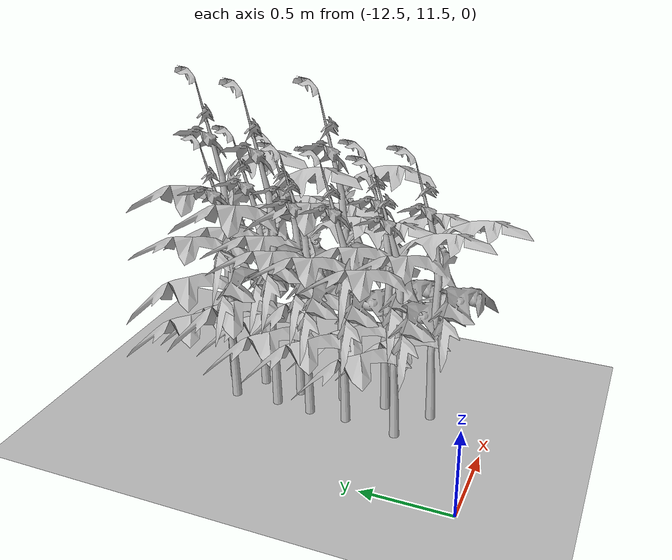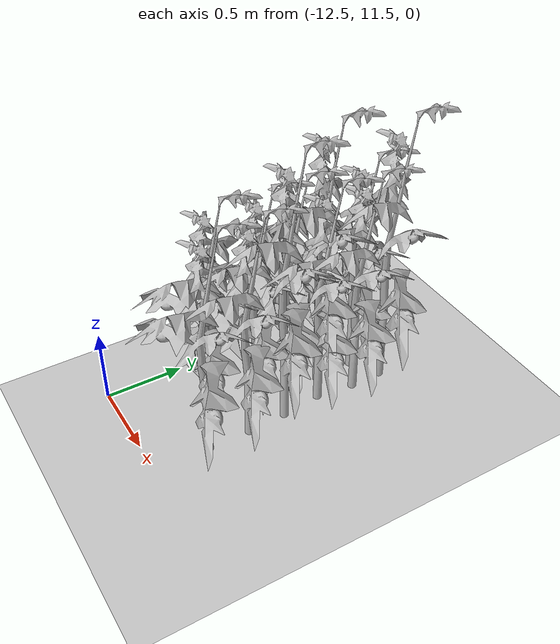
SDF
<sdf version="1.6">
 <world name="default">
  <model name="ground_plane">
   <static>1</static>
   <link name="link">
    <collision name="collision">
     <geometry><plane><normal>0 0 1</normal><size>100 100</size></plane></geometry>
     <surface>
      <contact><collide_bitmask>65535</collide_bitmask></contact>
      <friction><ode><mu>100</mu><mu2>50</mu2></ode></friction>
     </surface>
    </collision>
    <visual name="visual">
     <cast_shadows>0</cast_shadows>
     <geometry><plane><normal>0 0 1</normal><size>100 100</size></plane></geometry>
     <material>
      <script><uri>file://media/materials/scripts/gazebo.material</uri><name>Gazebo/Grey</name></script>
     </material>
    </visual>
   </link>
  </model>
  <model name="Front_Plant_1_31">
   <model name="tomato_plant_medium">
    <static>1</static>
    <link name="link">
     <collision name="collision">
      <pose>0 0 0 1.5708 -0 0</pose>
      <geometry><mesh><scale>0.5 0.5 0.5</scale><uri>model://stick/meshes/stick.dae</uri></mesh></geometry>
     </collision>
     <visual name="visual">
      <geometry>
       <mesh><scale>5e-06 5e-06 6e-06</scale><uri>model://tomato_plant_medium/meshes/tomato-plant.dae</uri></mesh>
      </geometry>
     </visual>
    </link>
    <pose>0.087453 -0.595994 0.012396 0 -0 0</pose>
   </model>
   <model name="tomato_plant_medium_0">
    <static>1</static>
    <link name="link">
     <collision name="collision">
      <pose>0 0 0 1.5708 -0 0</pose>
      <geometry><mesh><scale>0.5 0.5 0.5</scale><uri>model://stick/meshes/stick.dae</uri></mesh></geometry>
     </collision>
     <visual name="visual">
      <geometry>
       <mesh><scale>5e-06 5e-06 6e-06</scale><uri>model://tomato_plant_medium/meshes/tomato-plant.dae</uri></mesh>
      </geometry>
     </visual>
    </link>
    <pose>-0.086166 -0.251822 0.012396 0 -0 0</pose>
   </model>
   <model name="tomato_plant_medium_1">
    <static>1</static>
    <link name="link">
     <collision name="collision">
      <pose>0 0 0 1.5708 -0 0</pose>
      <geometry><mesh><scale>0.5 0.5 0.5</scale><uri>model://stick/meshes/stick.dae</uri></mesh></geometry>
     </collision>
     <visual name="visual">
      <geometry>
       <mesh><scale>5e-06 5e-06 6e-06</scale><uri>model://tomato_plant_medium/meshes/tomato-plant.dae</uri></mesh>
      </geometry>
     </visual>
    </link>
    <pose>0.080199 0.118127 0.012396 0 -0 0</pose>
   </model>
   <model name="tomato_plant_small">
    <static>1</static>
    <link name="link">
     <collision name="collision">
      <pose>0 0 0 1.5708 -0 0</pose>
      <geometry><mesh><scale>0.5 0.45 0.5</scale><uri>model://stick/meshes/stick.dae</uri></mesh></geometry>
     </collision>
     <visual name="visual">
      <geometry>
       <mesh><scale>5e-06 5e-06 5e-06</scale><uri>model://tomato_plant_small/meshes/tomato-plant.dae</uri></mesh>
      </geometry>
     </visual>
    </link>
    <pose>0.099683 -1.12011 0.012396 0 -0 0</pose>
   </model>
   <model name="tomato_plant_small_0">
    <static>1</static>
    <link name="link">
     <collision name="collision">
      <pose>0 0 0 1.5708 -0 0</pose>
      <geometry><mesh><scale>0.5 0.45 0.5</scale><uri>model://stick/meshes/stick.dae</uri></mesh></geometry>
     </collision>
     <visual name="visual">
      <geometry>
       <mesh><scale>5e-06 5e-06 5e-06</scale><uri>model://tomato_plant_small/meshes/tomato-plant.dae</uri></mesh>
      </geometry>
     </visual>
    </link>
    <pose>-0.138771 -0.983982 0.012396 0 -0 0</pose>
   </model>
   <model name="tomato_plant_small_1">
    <static>1</static>
    <link name="link">
     <collision name="collision">
      <pose>0 0 0 1.5708 -0 0</pose>
      <geometry><mesh><scale>0.5 0.45 0.5</scale><uri>model://stick/meshes/stick.dae</uri></mesh></geometry>
     </collision>
     <visual name="visual">
      <geometry>
       <mesh><scale>5e-06 5e-06 5e-06</scale><uri>model://tomato_plant_small/meshes/tomato-plant.dae</uri></mesh>
      </geometry>
     </visual>
    </link>
    <pose>0.101334 -0.848814 0.012396 0 -0 0</pose>
   </model>
   <model name="tomato_plant_small_2">
    <static>1</static>
    <link name="link">
     <collision name="collision">
      <pose>0 0 0 1.5708 -0 0</pose>
      <geometry><mesh><scale>0.5 0.45 0.5</scale><uri>model://stick/meshes/stick.dae</uri></mesh></geometry>
     </collision>
     <visual name="visual">
      <geometry>
       <mesh><scale>5e-06 5e-06 5e-06</scale><uri>model://tomato_plant_small/meshes/tomato-plant.dae</uri></mesh>
      </geometry>
     </visual>
    </link>
    <pose>-0.103369 -0.683189 0.012396 0 -0 0</pose>
   </model>
   <model name="tomato_plant_small_3">
    <static>1</static>
    <link name="link">
     <collision name="collision">
      <pose>0 0 0 1.5708 -0 0</pose>
      <geometry><mesh><scale>0.5 0.45 0.5</scale><uri>model://stick/meshes/stick.dae</uri></mesh></geometry>
     </collision>
     <visual name="visual">
      <geometry>
       <mesh><scale>5e-06 5e-06 5e-06</scale><uri>model://tomato_plant_small/meshes/tomato-plant.dae</uri></mesh>
      </geometry>
     </visual>
    </link>
    <pose>-0.104381 -0.464811 0.012396 0 -0 0</pose>
   </model>
   <model name="tomato_plant_small_4">
    <static>1</static>
    <link name="link">
     <collision name="collision">
      <pose>0 0 0 1.5708 -0 0</pose>
      <geometry><mesh><scale>0.5 0.45 0.5</scale><uri>model://stick/meshes/stick.dae</uri></mesh></geometry>
     </collision>
     <visual name="visual">
      <geometry>
       <mesh><scale>5e-06 5e-06 5e-06</scale><uri>model://tomato_plant_small/meshes/tomato-plant.dae</uri></mesh>
      </geometry>
     </visual>
    </link>
    <pose>0.055604 -0.336879 0.012396 0 -0 0</pose>
   </model>
   <model name="tomato_plant_small_5">
    <static>1</static>
    <link name="link">
     <collision name="collision">
      <pose>0 0 0 1.5708 -0 0</pose>
      <geometry><mesh><scale>0.5 0.45 0.5</scale><uri>model://stick/meshes/stick.dae</uri></mesh></geometry>
     </collision>
     <visual name="visual">
      <geometry>
       <mesh><scale>5e-06 5e-06 5e-06</scale><uri>model://tomato_plant_small/meshes/tomato-plant.dae</uri></mesh>
      </geometry>
     </visual>
    </link>
    <pose>0.085059 -0.092572 0.012396 0 -0 0</pose>
   </model>
   <model name="tomato_plant_small_6">
    <static>1</static>
    <link name="link">
     <collision name="collision">
      <pose>0 0 0 1.5708 -0 0</pose>
      <geometry><mesh><scale>0.5 0.45 0.5</scale><uri>model://stick/meshes/stick.dae</uri></mesh></geometry>
     </collision>
     <visual name="visual">
      <geometry>
       <mesh><scale>5e-06 5e-06 5e-06</scale><uri>model://tomato_plant_small/meshes/tomato-plant.dae</uri></mesh>
      </geometry>
     </visual>
    </link>
    <pose>-0.096345 0.008888 0.012396 0 -0 0</pose>
   </model>
   <static>0</static>
   <pose>-11.8544 12.9427 0 0 -0 0</pose>
  </model>
 </world>
</sdf>
